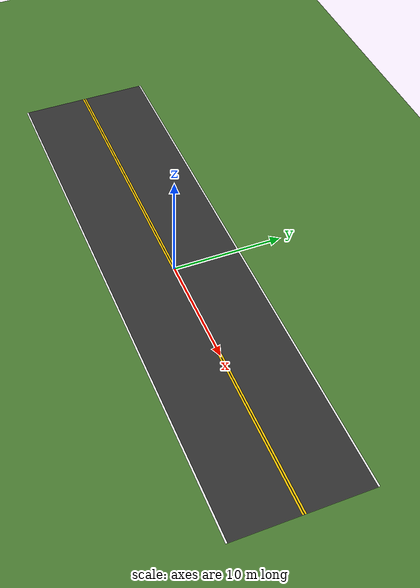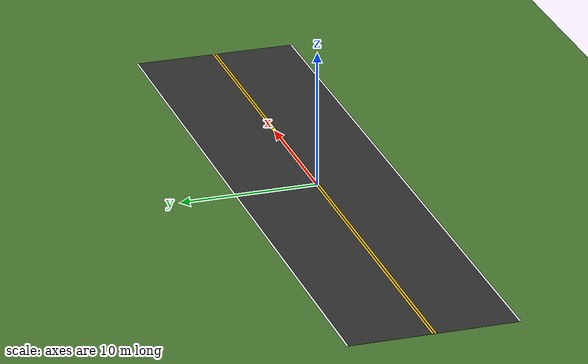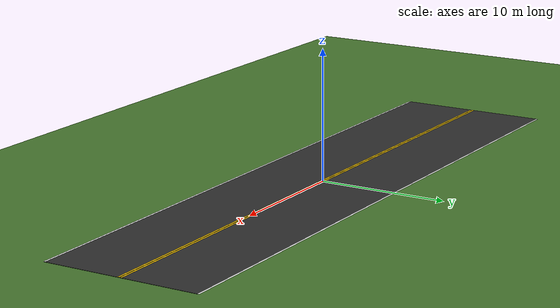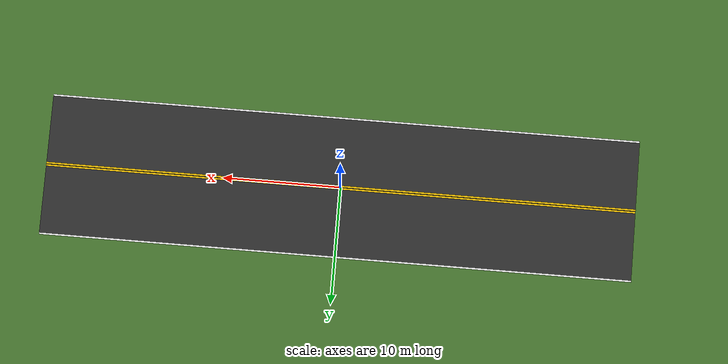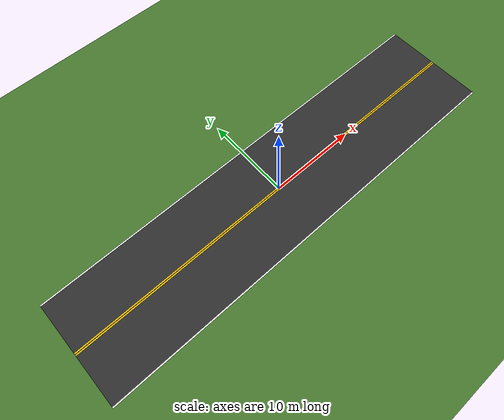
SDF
<?xml version="1.0" ?>
<sdf version="1.9">
  <world name="track_world">
    <physics name="1ms" type="ignored">
      <max_step_size>0.001</max_step_size>
      <real_time_factor>1.0</real_time_factor>
    </physics>

    <!-- Plugins -->
    <plugin filename="gz-sim-physics-system" name="gz::sim::systems::Physics"/>
    <plugin filename="gz-sim-user-commands-system" name="gz::sim::systems::UserCommands"/>
    <plugin filename="gz-sim-scene-broadcaster-system" name="gz::sim::systems::SceneBroadcaster"/>

    <!-- Lighting -->
    <light type="directional" name="sun">
      <cast_shadows>true</cast_shadows>
      <pose>0 0 10 0 0 0</pose>
      <diffuse>1.0 1.0 1.0 1</diffuse>
      <specular>0.4 0.4 0.4 1</specular>
      <direction>-0.5 0.5 -0.9</direction>
    </light>

    <!-- Ground Plane (Grass) -->
    <model name="ground_plane">
      <static>true</static>
      <link name="link">
        <collision name="collision">
          <geometry>
            <plane>
              <normal>0 0 1</normal>
              <size>100 100</size>
            </plane>
          </geometry>
        </collision>
        <visual name="visual">
          <geometry>
            <plane>
              <normal>0 0 1</normal>
              <size>100 100</size>
            </plane>
          </geometry>
          <material>
            <ambient>0.3 0.5 0.2 1</ambient>
            <diffuse>0.3 0.5 0.2 1</diffuse>
            <specular>0.1 0.1 0.1 1</specular>
          </material>
        </visual>
      </link>
    </model>

    <!-- Road Surface -->
    <model name="road">
      <static>true</static>
      <pose>0 0 0.01 0 0 0</pose>
      <link name="link">
        <collision name="collision">
          <geometry>
            <box>
              <size>50 12 0.02</size>
            </box>
          </geometry>
        </collision>
        <visual name="visual">
          <geometry>
            <box>
              <size>50 12 0.02</size>
            </box>
          </geometry>
          <material>
            <ambient>0.2 0.2 0.2 1</ambient>
            <diffuse>0.2 0.2 0.2 1</diffuse>
            <specular>0.2 0.2 0.2 1</specular>
          </material>
        </visual>
      </link>
    </model>

    <!-- Road Lines -->
    <model name="road_lines">
      <static>true</static>
      <link name="link">
        <!-- Center double yellow lines -->
        <visual name="center_line_1">
          <pose>0 0.1 0.02 0 0 0</pose>
          <geometry>
            <box>
              <size>50 0.15 0.001</size>
            </box>
          </geometry>
          <material>
            <ambient>1.0 0.8 0.0 1</ambient>
            <diffuse>1.0 0.8 0.0 1</diffuse>
            <specular>0.5 0.5 0.0 1</specular>
            <emissive>0.3 0.2 0.0 1</emissive>
          </material>
        </visual>
        <visual name="center_line_2">
          <pose>0 -0.1 0.02 0 0 0</pose>
          <geometry>
            <box>
              <size>50 0.15 0.001</size>
            </box>
          </geometry>
          <material>
            <ambient>1.0 0.8 0.0 1</ambient>
            <diffuse>1.0 0.8 0.0 1</diffuse>
            <specular>0.5 0.5 0.0 1</specular>
            <emissive>0.3 0.2 0.0 1</emissive>
          </material>
        </visual>
        <!-- Outer white lines -->
        <visual name="outer_line_left">
          <pose>0 6 0.02 0 0 0</pose>
          <geometry>
            <box>
              <size>50 0.15 0.001</size>
            </box>
          </geometry>
          <material>
            <ambient>1.0 1.0 1.0 1</ambient>
            <diffuse>1.0 1.0 1.0 1</diffuse>
            <specular>0.5 0.5 0.5 1</specular>
            <emissive>0.3 0.3 0.3 1</emissive>
          </material>
        </visual>
        <visual name="outer_line_right">
          <pose>0 -6 0.02 0 0 0</pose>
          <geometry>
            <box>
              <size>50 0.15 0.001</size>
            </box>
          </geometry>
          <material>
            <ambient>1.0 1.0 1.0 1</ambient>
            <diffuse>1.0 1.0 1.0 1</diffuse>
            <specular>0.5 0.5 0.5 1</specular>
            <emissive>0.3 0.3 0.3 1</emissive>
          </material>
        </visual>
      </link>
    </model>
  </world>
</sdf>
